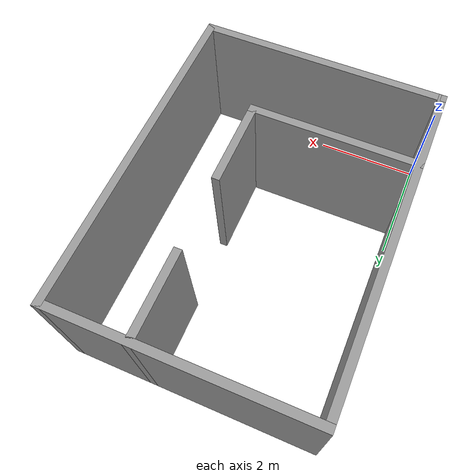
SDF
<?xml version='1.0'?>
<sdf version='1.6'>
  <model name='room'>
    <pose frame=''>2.286 3.048 0 0 -0 0</pose>
    <link name='Wall_0'>
      <collision name='Wall_0_Collision'>
        <geometry>
          <box>
            <size>4.722 0.15 2.5</size>
          </box>
        </geometry>
        <pose frame=''>0 0 1.25 0 -0 0</pose>
      </collision>
      <visual name='Wall_0_Visual'>
        <pose frame=''>0 0 1.25 0 -0 0</pose>
        <geometry>
          <box>
            <size>4.722 0.15 2.5</size>
          </box>
        </geometry>
        <material>
          <script>
            <uri>file://media/materials/scripts/gazebo.material</uri>
            <name>Gazebo/Grey</name>
          </script>
          <ambient>1 1 1 1</ambient>
        </material>
        <meta>
          <layer>0</layer>
        </meta>
      </visual>
      <pose frame=''>0 -3.048 0 0 -0 0</pose>
    </link>
    <link name='Wall_1'>
      <collision name='Wall_1_Collision'>
        <geometry>
          <box>
            <size>6.246 0.15 2.5</size>
          </box>
        </geometry>
        <pose frame=''>0 0 1.25 0 -0 0</pose>
      </collision>
      <visual name='Wall_1_Visual'>
        <pose frame=''>0 0 1.25 0 -0 0</pose>
        <geometry>
          <box>
            <size>6.246 0.15 2.5</size>
          </box>
        </geometry>
        <material>
          <script>
            <uri>file://media/materials/scripts/gazebo.material</uri>
            <name>Gazebo/Grey</name>
          </script>
          <ambient>1 1 1 1</ambient>
        </material>
        <meta>
          <layer>0</layer>
        </meta>
      </visual>
      <pose frame=''>2.286 0 0 0 -0 1.5708</pose>
    </link>
    <link name='Wall_2'>
      <collision name='Wall_2_Collision'>
        <geometry>
          <box>
            <size>4.722 0.15 2.5</size>
          </box>
        </geometry>
        <pose frame=''>0 0 1.25 0 -0 0</pose>
      </collision>
      <visual name='Wall_2_Visual'>
        <pose frame=''>0 0 1.25 0 -0 0</pose>
        <geometry>
          <box>
            <size>4.722 0.15 2.5</size>
          </box>
        </geometry>
        <material>
          <script>
            <uri>file://media/materials/scripts/gazebo.material</uri>
            <name>Gazebo/Grey</name>
          </script>
          <ambient>1 1 1 1</ambient>
        </material>
        <meta>
          <layer>0</layer>
        </meta>
      </visual>
      <pose frame=''>0 3.048 0 0 -0 3.14159</pose>
    </link>
    <link name='Wall_3'>
      <collision name='Wall_3_Collision'>
        <geometry>
          <box>
            <size>6.246 0.15 2.5</size>
          </box>
        </geometry>
        <pose frame=''>0 0 1.25 0 -0 0</pose>
      </collision>
      <visual name='Wall_3_Visual'>
        <pose frame=''>0 0 1.25 0 -0 0</pose>
        <geometry>
          <box>
            <size>6.246 0.15 2.5</size>
          </box>
        </geometry>
        <material>
          <script>
            <uri>file://media/materials/scripts/gazebo.material</uri>
            <name>Gazebo/Grey</name>
          </script>
          <ambient>1 1 1 1</ambient>
        </material>
        <meta>
          <layer>0</layer>
        </meta>
      </visual>
      <pose frame=''>-2.286 0 0 0 -0 -1.5708</pose>
    </link>
    <link name='Wall_5'>
      <collision name='Wall_5_Collision'>
        <geometry>
          <box>
            <size>1.674 0.15 2.5</size>
          </box>
        </geometry>
        <pose frame=''>0 0 1.25 0 -0 0</pose>
      </collision>
      <visual name='Wall_5_Visual'>
        <pose frame=''>0 0 1.25 0 -0 0</pose>
        <geometry>
          <box>
            <size>1.674 0.15 2.5</size>
          </box>
        </geometry>
        <material>
          <script>
            <uri>file://media/materials/scripts/gazebo.material</uri>
            <name>Gazebo/Grey</name>
          </script>
          <ambient>1 1 1 1</ambient>
        </material>
        <meta>
          <layer>0</layer>
        </meta>
      </visual>
      <pose frame=''>0.762 -0.762 0 0 -0 -1.5708</pose>
    </link>
    <link name='Wall_6'>
      <collision name='Wall_6_Collision'>
        <geometry>
          <box>
            <size>3.198 0.15 2.5</size>
          </box>
        </geometry>
        <pose frame=''>0 0 1.25 0 -0 0</pose>
      </collision>
      <visual name='Wall_6_Visual'>
        <pose frame=''>0 0 1.25 0 -0 0</pose>
        <geometry>
          <box>
            <size>3.198 0.15 2.5</size>
          </box>
        </geometry>
        <material>
          <script>
            <uri>file://media/materials/scripts/gazebo.material</uri>
            <name>Gazebo/Grey</name>
          </script>
          <ambient>1 1 1 1</ambient>
        </material>
        <meta>
          <layer>0</layer>
        </meta>
      </visual>
      <pose frame=''>-0.762 -1.524 0 0 -0 3.14159</pose>
    </link>
    <link name='Wall_8'>
      <collision name='Wall_8_Collision'>
        <geometry>
          <box>
            <size>1.674 0.15 2.5</size>
          </box>
        </geometry>
        <pose frame=''>0 0 1.25 0 -0 0</pose>
      </collision>
      <visual name='Wall_8_Visual'>
        <pose frame=''>0 0 1.25 0 -0 0</pose>
        <geometry>
          <box>
            <size>1.674 0.15 2.5</size>
          </box>
        </geometry>
        <material>
          <script>
            <uri>file://media/materials/scripts/gazebo.material</uri>
            <name>Gazebo/Grey</name>
          </script>
          <ambient>1 1 1 1</ambient>
        </material>
        <meta>
          <layer>0</layer>
        </meta>
      </visual>
      <pose frame=''>0.762 2.286 0 0 -0 1.5708</pose>
    </link>
    <static>1</static>
  </model>
</sdf>
